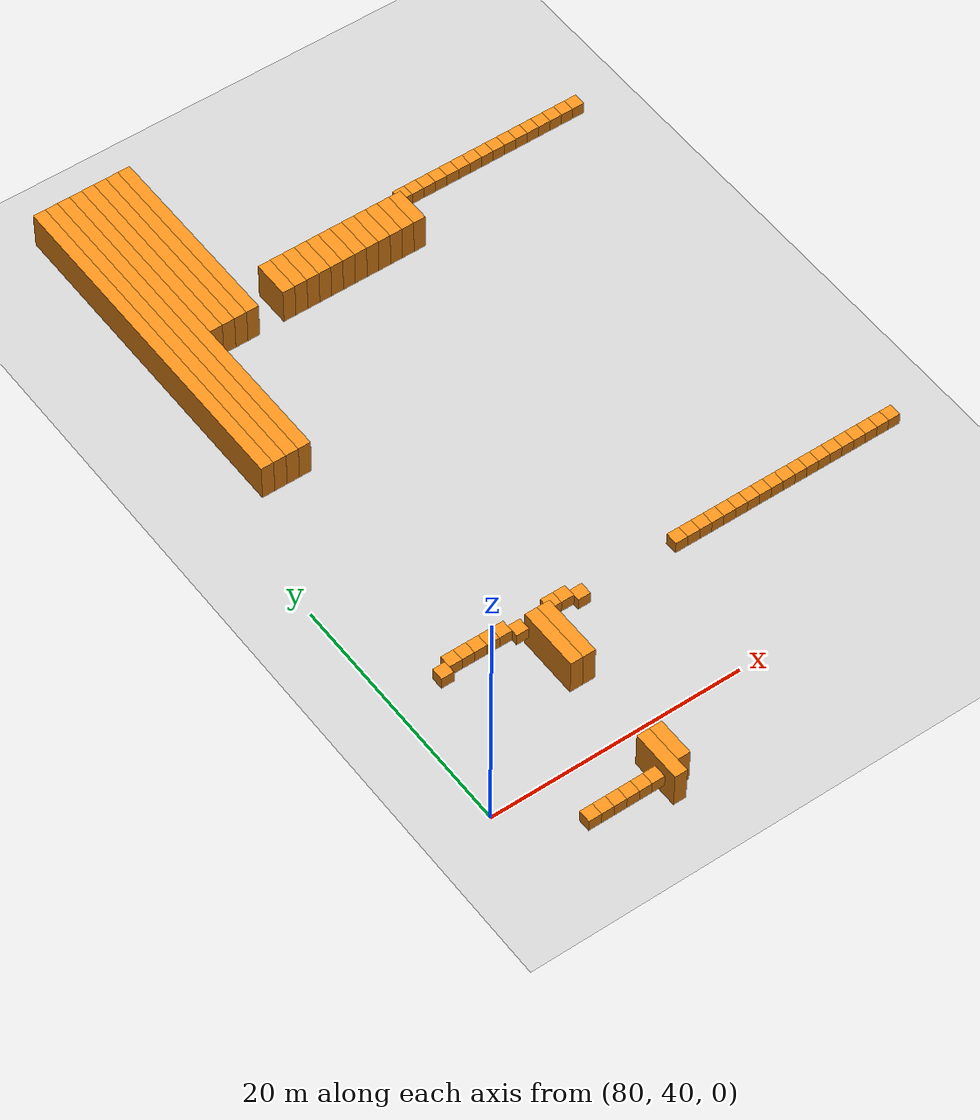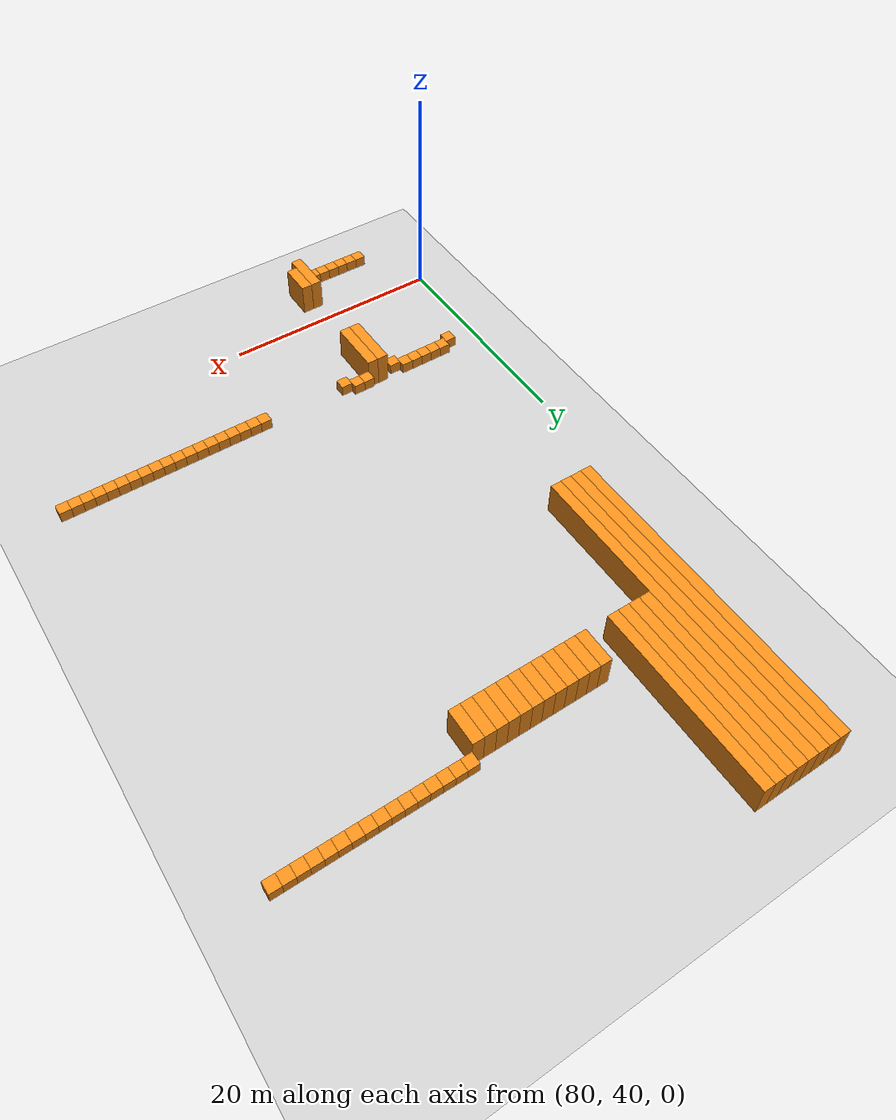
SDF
<sdf version="1.6">
 <world name="default">
  <include><uri>model://ground_plane</uri></include>
  <model name="unit_box_870">
   <pose>83.50    50.00     1.50 0 0 0</pose>
   <static>1</static>
   <link name="link">
    <inertial>
     <mass>5000</mass>
     <inertia><ixx>200</ixx><ixy>0</ixy><ixz>0</ixz><iyy>200</iyy><iyz>0</iyz><izz>200</izz></inertia>
    </inertial>
    <collision name="collision"><geometry><box><size>1 1 1</size></box></geometry></collision>
    <visual name="visual">
     <geometry><box><size>1 1 1</size></box></geometry>
     <material>
      <script><name>Gazebo/Orange</name><uri>file://media/materials/scripts/gazebo.material</uri></script>
     </material>
    </visual>
   </link>
  </model>
  <model name="unit_box_871">
   <pose>83.50    84.00     1.50 0 0 0</pose>
   <static>1</static>
   <link name="link">
    <inertial>
     <mass>5000</mass>
     <inertia><ixx>200</ixx><ixy>0</ixy><ixz>0</ixz><iyy>200</iyy><iyz>0</iyz><izz>200</izz></inertia>
    </inertial>
    <collision name="collision"><geometry><box><size>1 28 3</size></box></geometry></collision>
    <visual name="visual">
     <geometry><box><size>1 28 3</size></box></geometry>
     <material>
      <script><name>Gazebo/Orange</name><uri>file://media/materials/scripts/gazebo.material</uri></script>
     </material>
    </visual>
   </link>
  </model>
  <model name="unit_box_882">
   <pose>84.50    35.50     1.50 0 0 0</pose>
   <static>1</static>
   <link name="link">
    <inertial>
     <mass>5000</mass>
     <inertia><ixx>200</ixx><ixy>0</ixy><ixz>0</ixz><iyy>200</iyy><iyz>0</iyz><izz>200</izz></inertia>
    </inertial>
    <collision name="collision"><geometry><box><size>1 1 1</size></box></geometry></collision>
    <visual name="visual">
     <geometry><box><size>1 1 1</size></box></geometry>
     <material>
      <script><name>Gazebo/Orange</name><uri>file://media/materials/scripts/gazebo.material</uri></script>
     </material>
    </visual>
   </link>
  </model>
  <model name="unit_box_883">
   <pose>84.50    50.50     1.50 0 0 0</pose>
   <static>1</static>
   <link name="link">
    <inertial>
     <mass>5000</mass>
     <inertia><ixx>200</ixx><ixy>0</ixy><ixz>0</ixz><iyy>200</iyy><iyz>0</iyz><izz>200</izz></inertia>
    </inertial>
    <collision name="collision"><geometry><box><size>1 1 1</size></box></geometry></collision>
    <visual name="visual">
     <geometry><box><size>1 1 1</size></box></geometry>
     <material>
      <script><name>Gazebo/Orange</name><uri>file://media/materials/scripts/gazebo.material</uri></script>
     </material>
    </visual>
   </link>
  </model>
  <model name="unit_box_884">
   <pose>84.50    84.00     1.50 0 0 0</pose>
   <static>1</static>
   <link name="link">
    <inertial>
     <mass>5000</mass>
     <inertia><ixx>200</ixx><ixy>0</ixy><ixz>0</ixz><iyy>200</iyy><iyz>0</iyz><izz>200</izz></inertia>
    </inertial>
    <collision name="collision"><geometry><box><size>1 28 3</size></box></geometry></collision>
    <visual name="visual">
     <geometry><box><size>1 28 3</size></box></geometry>
     <material>
      <script><name>Gazebo/Orange</name><uri>file://media/materials/scripts/gazebo.material</uri></script>
     </material>
    </visual>
   </link>
  </model>
  <model name="unit_box_890">
   <pose>85.50    35.50     1.50 0 0 0</pose>
   <static>1</static>
   <link name="link">
    <inertial>
     <mass>5000</mass>
     <inertia><ixx>200</ixx><ixy>0</ixy><ixz>0</ixz><iyy>200</iyy><iyz>0</iyz><izz>200</izz></inertia>
    </inertial>
    <collision name="collision"><geometry><box><size>1 1 1</size></box></geometry></collision>
    <visual name="visual">
     <geometry><box><size>1 1 1</size></box></geometry>
     <material>
      <script><name>Gazebo/Orange</name><uri>file://media/materials/scripts/gazebo.material</uri></script>
     </material>
    </visual>
   </link>
  </model>
  <model name="unit_box_891">
   <pose>85.50    50.50     1.50 0 0 0</pose>
   <static>1</static>
   <link name="link">
    <inertial>
     <mass>5000</mass>
     <inertia><ixx>200</ixx><ixy>0</ixy><ixz>0</ixz><iyy>200</iyy><iyz>0</iyz><izz>200</izz></inertia>
    </inertial>
    <collision name="collision"><geometry><box><size>1 1 1</size></box></geometry></collision>
    <visual name="visual">
     <geometry><box><size>1 1 1</size></box></geometry>
     <material>
      <script><name>Gazebo/Orange</name><uri>file://media/materials/scripts/gazebo.material</uri></script>
     </material>
    </visual>
   </link>
  </model>
  <model name="unit_box_892">
   <pose>85.50    84.00     1.50 0 0 0</pose>
   <static>1</static>
   <link name="link">
    <inertial>
     <mass>5000</mass>
     <inertia><ixx>200</ixx><ixy>0</ixy><ixz>0</ixz><iyy>200</iyy><iyz>0</iyz><izz>200</izz></inertia>
    </inertial>
    <collision name="collision"><geometry><box><size>1 28 3</size></box></geometry></collision>
    <visual name="visual">
     <geometry><box><size>1 28 3</size></box></geometry>
     <material>
      <script><name>Gazebo/Orange</name><uri>file://media/materials/scripts/gazebo.material</uri></script>
     </material>
    </visual>
   </link>
  </model>
  <model name="unit_box_897">
   <pose>86.50    35.50     1.50 0 0 0</pose>
   <static>1</static>
   <link name="link">
    <inertial>
     <mass>5000</mass>
     <inertia><ixx>200</ixx><ixy>0</ixy><ixz>0</ixz><iyy>200</iyy><iyz>0</iyz><izz>200</izz></inertia>
    </inertial>
    <collision name="collision"><geometry><box><size>1 1 1</size></box></geometry></collision>
    <visual name="visual">
     <geometry><box><size>1 1 1</size></box></geometry>
     <material>
      <script><name>Gazebo/Orange</name><uri>file://media/materials/scripts/gazebo.material</uri></script>
     </material>
    </visual>
   </link>
  </model>
  <model name="unit_box_898">
   <pose>86.50    50.50     1.50 0 0 0</pose>
   <static>1</static>
   <link name="link">
    <inertial>
     <mass>5000</mass>
     <inertia><ixx>200</ixx><ixy>0</ixy><ixz>0</ixz><iyy>200</iyy><iyz>0</iyz><izz>200</izz></inertia>
    </inertial>
    <collision name="collision"><geometry><box><size>1 1 1</size></box></geometry></collision>
    <visual name="visual">
     <geometry><box><size>1 1 1</size></box></geometry>
     <material>
      <script><name>Gazebo/Orange</name><uri>file://media/materials/scripts/gazebo.material</uri></script>
     </material>
    </visual>
   </link>
  </model>
  <model name="unit_box_899">
   <pose>86.50    84.00     1.50 0 0 0</pose>
   <static>1</static>
   <link name="link">
    <inertial>
     <mass>5000</mass>
     <inertia><ixx>200</ixx><ixy>0</ixy><ixz>0</ixz><iyy>200</iyy><iyz>0</iyz><izz>200</izz></inertia>
    </inertial>
    <collision name="collision"><geometry><box><size>1 28 3</size></box></geometry></collision>
    <visual name="visual">
     <geometry><box><size>1 28 3</size></box></geometry>
     <material>
      <script><name>Gazebo/Orange</name><uri>file://media/materials/scripts/gazebo.material</uri></script>
     </material>
    </visual>
   </link>
  </model>
  <model name="unit_box_904">
   <pose>87.50    35.50     1.50 0 0 0</pose>
   <static>1</static>
   <link name="link">
    <inertial>
     <mass>5000</mass>
     <inertia><ixx>200</ixx><ixy>0</ixy><ixz>0</ixz><iyy>200</iyy><iyz>0</iyz><izz>200</izz></inertia>
    </inertial>
    <collision name="collision"><geometry><box><size>1 1 1</size></box></geometry></collision>
    <visual name="visual">
     <geometry><box><size>1 1 1</size></box></geometry>
     <material>
      <script><name>Gazebo/Orange</name><uri>file://media/materials/scripts/gazebo.material</uri></script>
     </material>
    </visual>
   </link>
  </model>
  <model name="unit_box_905">
   <pose>87.50    50.50     1.50 0 0 0</pose>
   <static>1</static>
   <link name="link">
    <inertial>
     <mass>5000</mass>
     <inertia><ixx>200</ixx><ixy>0</ixy><ixz>0</ixz><iyy>200</iyy><iyz>0</iyz><izz>200</izz></inertia>
    </inertial>
    <collision name="collision"><geometry><box><size>1 1 1</size></box></geometry></collision>
    <visual name="visual">
     <geometry><box><size>1 1 1</size></box></geometry>
     <material>
      <script><name>Gazebo/Orange</name><uri>file://media/materials/scripts/gazebo.material</uri></script>
     </material>
    </visual>
   </link>
  </model>
  <model name="unit_box_906">
   <pose>87.50    90.00     1.50 0 0 0</pose>
   <static>1</static>
   <link name="link">
    <inertial>
     <mass>5000</mass>
     <inertia><ixx>200</ixx><ixy>0</ixy><ixz>0</ixz><iyy>200</iyy><iyz>0</iyz><izz>200</izz></inertia>
    </inertial>
    <collision name="collision"><geometry><box><size>1 16 3</size></box></geometry></collision>
    <visual name="visual">
     <geometry><box><size>1 16 3</size></box></geometry>
     <material>
      <script><name>Gazebo/Orange</name><uri>file://media/materials/scripts/gazebo.material</uri></script>
     </material>
    </visual>
   </link>
  </model>
  <model name="unit_box_911">
   <pose>88.50    35.50     1.50 0 0 0</pose>
   <static>1</static>
   <link name="link">
    <inertial>
     <mass>5000</mass>
     <inertia><ixx>200</ixx><ixy>0</ixy><ixz>0</ixz><iyy>200</iyy><iyz>0</iyz><izz>200</izz></inertia>
    </inertial>
    <collision name="collision"><geometry><box><size>1 1 1</size></box></geometry></collision>
    <visual name="visual">
     <geometry><box><size>1 1 1</size></box></geometry>
     <material>
      <script><name>Gazebo/Orange</name><uri>file://media/materials/scripts/gazebo.material</uri></script>
     </material>
    </visual>
   </link>
  </model>
  <model name="unit_box_912">
   <pose>88.50    50.50     1.50 0 0 0</pose>
   <static>1</static>
   <link name="link">
    <inertial>
     <mass>5000</mass>
     <inertia><ixx>200</ixx><ixy>0</ixy><ixz>0</ixz><iyy>200</iyy><iyz>0</iyz><izz>200</izz></inertia>
    </inertial>
    <collision name="collision"><geometry><box><size>1 1 1</size></box></geometry></collision>
    <visual name="visual">
     <geometry><box><size>1 1 1</size></box></geometry>
     <material>
      <script><name>Gazebo/Orange</name><uri>file://media/materials/scripts/gazebo.material</uri></script>
     </material>
    </visual>
   </link>
  </model>
  <model name="unit_box_913">
   <pose>88.50    90.00     1.50 0 0 0</pose>
   <static>1</static>
   <link name="link">
    <inertial>
     <mass>5000</mass>
     <inertia><ixx>200</ixx><ixy>0</ixy><ixz>0</ixz><iyy>200</iyy><iyz>0</iyz><izz>200</izz></inertia>
    </inertial>
    <collision name="collision"><geometry><box><size>1 16 3</size></box></geometry></collision>
    <visual name="visual">
     <geometry><box><size>1 16 3</size></box></geometry>
     <material>
      <script><name>Gazebo/Orange</name><uri>file://media/materials/scripts/gazebo.material</uri></script>
     </material>
    </visual>
   </link>
  </model>
  <model name="unit_box_919">
   <pose>89.50    35.50     1.50 0 0 0</pose>
   <static>1</static>
   <link name="link">
    <inertial>
     <mass>5000</mass>
     <inertia><ixx>200</ixx><ixy>0</ixy><ixz>0</ixz><iyy>200</iyy><iyz>0</iyz><izz>200</izz></inertia>
    </inertial>
    <collision name="collision"><geometry><box><size>1 1 1</size></box></geometry></collision>
    <visual name="visual">
     <geometry><box><size>1 1 1</size></box></geometry>
     <material>
      <script><name>Gazebo/Orange</name><uri>file://media/materials/scripts/gazebo.material</uri></script>
     </material>
    </visual>
   </link>
  </model>
  <model name="unit_box_920">
   <pose>89.50    50.00     1.50 0 0 0</pose>
   <static>1</static>
   <link name="link">
    <inertial>
     <mass>5000</mass>
     <inertia><ixx>200</ixx><ixy>0</ixy><ixz>0</ixz><iyy>200</iyy><iyz>0</iyz><izz>200</izz></inertia>
    </inertial>
    <collision name="collision"><geometry><box><size>1 1 1</size></box></geometry></collision>
    <visual name="visual">
     <geometry><box><size>1 1 1</size></box></geometry>
     <material>
      <script><name>Gazebo/Orange</name><uri>file://media/materials/scripts/gazebo.material</uri></script>
     </material>
    </visual>
   </link>
  </model>
  <model name="unit_box_921">
   <pose>89.50    90.00     1.50 0 0 0</pose>
   <static>1</static>
   <link name="link">
    <inertial>
     <mass>5000</mass>
     <inertia><ixx>200</ixx><ixy>0</ixy><ixz>0</ixz><iyy>200</iyy><iyz>0</iyz><izz>200</izz></inertia>
    </inertial>
    <collision name="collision"><geometry><box><size>1 16 3</size></box></geometry></collision>
    <visual name="visual">
     <geometry><box><size>1 16 3</size></box></geometry>
     <material>
      <script><name>Gazebo/Orange</name><uri>file://media/materials/scripts/gazebo.material</uri></script>
     </material>
    </visual>
   </link>
  </model>
  <model name="unit_box_927">
   <pose>90.50    36.00     1.50 0 0 0</pose>
   <static>1</static>
   <link name="link">
    <inertial>
     <mass>5000</mass>
     <inertia><ixx>200</ixx><ixy>0</ixy><ixz>0</ixz><iyy>200</iyy><iyz>0</iyz><izz>200</izz></inertia>
    </inertial>
    <collision name="collision"><geometry><box><size>1 4 3</size></box></geometry></collision>
    <visual name="visual">
     <geometry><box><size>1 4 3</size></box></geometry>
     <material>
      <script><name>Gazebo/Orange</name><uri>file://media/materials/scripts/gazebo.material</uri></script>
     </material>
    </visual>
   </link>
  </model>
  <model name="unit_box_928">
   <pose>90.50    47.50     1.50 0 0 0</pose>
   <static>1</static>
   <link name="link">
    <inertial>
     <mass>5000</mass>
     <inertia><ixx>200</ixx><ixy>0</ixy><ixz>0</ixz><iyy>200</iyy><iyz>0</iyz><izz>200</izz></inertia>
    </inertial>
    <collision name="collision"><geometry><box><size>1 5 3</size></box></geometry></collision>
    <visual name="visual">
     <geometry><box><size>1 5 3</size></box></geometry>
     <material>
      <script><name>Gazebo/Orange</name><uri>file://media/materials/scripts/gazebo.material</uri></script>
     </material>
    </visual>
   </link>
  </model>
  <model name="unit_box_929">
   <pose>90.50    90.00     1.50 0 0 0</pose>
   <static>1</static>
   <link name="link">
    <inertial>
     <mass>5000</mass>
     <inertia><ixx>200</ixx><ixy>0</ixy><ixz>0</ixz><iyy>200</iyy><iyz>0</iyz><izz>200</izz></inertia>
    </inertial>
    <collision name="collision"><geometry><box><size>1 16 3</size></box></geometry></collision>
    <visual name="visual">
     <geometry><box><size>1 16 3</size></box></geometry>
     <material>
      <script><name>Gazebo/Orange</name><uri>file://media/materials/scripts/gazebo.material</uri></script>
     </material>
    </visual>
   </link>
  </model>
  <model name="unit_box_935">
   <pose>91.50    36.50     1.50 0 0 0</pose>
   <static>1</static>
   <link name="link">
    <inertial>
     <mass>5000</mass>
     <inertia><ixx>200</ixx><ixy>0</ixy><ixz>0</ixz><iyy>200</iyy><iyz>0</iyz><izz>200</izz></inertia>
    </inertial>
    <collision name="collision"><geometry><box><size>1 3 3</size></box></geometry></collision>
    <visual name="visual">
     <geometry><box><size>1 3 3</size></box></geometry>
     <material>
      <script><name>Gazebo/Orange</name><uri>file://media/materials/scripts/gazebo.material</uri></script>
     </material>
    </visual>
   </link>
  </model>
  <model name="unit_box_936">
   <pose>91.50    47.50     1.50 0 0 0</pose>
   <static>1</static>
   <link name="link">
    <inertial>
     <mass>5000</mass>
     <inertia><ixx>200</ixx><ixy>0</ixy><ixz>0</ixz><iyy>200</iyy><iyz>0</iyz><izz>200</izz></inertia>
    </inertial>
    <collision name="collision"><geometry><box><size>1 5 3</size></box></geometry></collision>
    <visual name="visual">
     <geometry><box><size>1 5 3</size></box></geometry>
     <material>
      <script><name>Gazebo/Orange</name><uri>file://media/materials/scripts/gazebo.material</uri></script>
     </material>
    </visual>
   </link>
  </model>
  <model name="unit_box_944">
   <pose>92.50    50.50     1.50 0 0 0</pose>
   <static>1</static>
   <link name="link">
    <inertial>
     <mass>5000</mass>
     <inertia><ixx>200</ixx><ixy>0</ixy><ixz>0</ixz><iyy>200</iyy><iyz>0</iyz><izz>200</izz></inertia>
    </inertial>
    <collision name="collision"><geometry><box><size>1 1 1</size></box></geometry></collision>
    <visual name="visual">
     <geometry><box><size>1 1 1</size></box></geometry>
     <material>
      <script><name>Gazebo/Orange</name><uri>file://media/materials/scripts/gazebo.material</uri></script>
     </material>
    </visual>
   </link>
  </model>
  <model name="unit_box_952">
   <pose>93.50    50.50     1.50 0 0 0</pose>
   <static>1</static>
   <link name="link">
    <inertial>
     <mass>5000</mass>
     <inertia><ixx>200</ixx><ixy>0</ixy><ixz>0</ixz><iyy>200</iyy><iyz>0</iyz><izz>200</izz></inertia>
    </inertial>
    <collision name="collision"><geometry><box><size>1 1 1</size></box></geometry></collision>
    <visual name="visual">
     <geometry><box><size>1 1 1</size></box></geometry>
     <material>
      <script><name>Gazebo/Orange</name><uri>file://media/materials/scripts/gazebo.material</uri></script>
     </material>
    </visual>
   </link>
  </model>
  <model name="unit_box_953">
   <pose>93.50    83.50     1.50 0 0 0</pose>
   <static>1</static>
   <link name="link">
    <inertial>
     <mass>5000</mass>
     <inertia><ixx>200</ixx><ixy>0</ixy><ixz>0</ixz><iyy>200</iyy><iyz>0</iyz><izz>200</izz></inertia>
    </inertial>
    <collision name="collision"><geometry><box><size>1 3 3</size></box></geometry></collision>
    <visual name="visual">
     <geometry><box><size>1 3 3</size></box></geometry>
     <material>
      <script><name>Gazebo/Orange</name><uri>file://media/materials/scripts/gazebo.material</uri></script>
     </material>
    </visual>
   </link>
  </model>
  <model name="unit_box_960">
   <pose>94.50    50.00     1.50 0 0 0</pose>
   <static>1</static>
   <link name="link">
    <inertial>
     <mass>5000</mass>
     <inertia><ixx>200</ixx><ixy>0</ixy><ixz>0</ixz><iyy>200</iyy><iyz>0</iyz><izz>200</izz></inertia>
    </inertial>
    <collision name="collision"><geometry><box><size>1 1 1</size></box></geometry></collision>
    <visual name="visual">
     <geometry><box><size>1 1 1</size></box></geometry>
     <material>
      <script><name>Gazebo/Orange</name><uri>file://media/materials/scripts/gazebo.material</uri></script>
     </material>
    </visual>
   </link>
  </model>
  <model name="unit_box_961">
   <pose>94.50    83.50     1.50 0 0 0</pose>
   <static>1</static>
   <link name="link">
    <inertial>
     <mass>5000</mass>
     <inertia><ixx>200</ixx><ixy>0</ixy><ixz>0</ixz><iyy>200</iyy><iyz>0</iyz><izz>200</izz></inertia>
    </inertial>
    <collision name="collision"><geometry><box><size>1 3 3</size></box></geometry></collision>
    <visual name="visual">
     <geometry><box><size>1 3 3</size></box></geometry>
     <material>
      <script><name>Gazebo/Orange</name><uri>file://media/materials/scripts/gazebo.material</uri></script>
     </material>
    </visual>
   </link>
  </model>
  <model name="unit_box_968">
   <pose>95.50    83.50     1.50 0 0 0</pose>
   <static>1</static>
   <link name="link">
    <inertial>
     <mass>5000</mass>
     <inertia><ixx>200</ixx><ixy>0</ixy><ixz>0</ixz><iyy>200</iyy><iyz>0</iyz><izz>200</izz></inertia>
    </inertial>
    <collision name="collision"><geometry><box><size>1 3 3</size></box></geometry></collision>
    <visual name="visual">
     <geometry><box><size>1 3 3</size></box></geometry>
     <material>
      <script><name>Gazebo/Orange</name><uri>file://media/materials/scripts/gazebo.material</uri></script>
     </material>
    </visual>
   </link>
  </model>
  <model name="unit_box_975">
   <pose>96.50    83.50     1.50 0 0 0</pose>
   <static>1</static>
   <link name="link">
    <inertial>
     <mass>5000</mass>
     <inertia><ixx>200</ixx><ixy>0</ixy><ixz>0</ixz><iyy>200</iyy><iyz>0</iyz><izz>200</izz></inertia>
    </inertial>
    <collision name="collision"><geometry><box><size>1 3 3</size></box></geometry></collision>
    <visual name="visual">
     <geometry><box><size>1 3 3</size></box></geometry>
     <material>
      <script><name>Gazebo/Orange</name><uri>file://media/materials/scripts/gazebo.material</uri></script>
     </material>
    </visual>
   </link>
  </model>
  <model name="unit_box_983">
   <pose>97.50    83.50     1.50 0 0 0</pose>
   <static>1</static>
   <link name="link">
    <inertial>
     <mass>5000</mass>
     <inertia><ixx>200</ixx><ixy>0</ixy><ixz>0</ixz><iyy>200</iyy><iyz>0</iyz><izz>200</izz></inertia>
    </inertial>
    <collision name="collision"><geometry><box><size>1 3 3</size></box></geometry></collision>
    <visual name="visual">
     <geometry><box><size>1 3 3</size></box></geometry>
     <material>
      <script><name>Gazebo/Orange</name><uri>file://media/materials/scripts/gazebo.material</uri></script>
     </material>
    </visual>
   </link>
  </model>
  <model name="unit_box_991">
   <pose>98.50    83.50     1.50 0 0 0</pose>
   <static>1</static>
   <link name="link">
    <inertial>
     <mass>5000</mass>
     <inertia><ixx>200</ixx><ixy>0</ixy><ixz>0</ixz><iyy>200</iyy><iyz>0</iyz><izz>200</izz></inertia>
    </inertial>
    <collision name="collision"><geometry><box><size>1 3 3</size></box></geometry></collision>
    <visual name="visual">
     <geometry><box><size>1 3 3</size></box></geometry>
     <material>
      <script><name>Gazebo/Orange</name><uri>file://media/materials/scripts/gazebo.material</uri></script>
     </material>
    </visual>
   </link>
  </model>
  <model name="unit_box_999">
   <pose>99.50    83.50     1.50 0 0 0</pose>
   <static>1</static>
   <link name="link">
    <inertial>
     <mass>5000</mass>
     <inertia><ixx>200</ixx><ixy>0</ixy><ixz>0</ixz><iyy>200</iyy><iyz>0</iyz><izz>200</izz></inertia>
    </inertial>
    <collision name="collision"><geometry><box><size>1 3 3</size></box></geometry></collision>
    <visual name="visual">
     <geometry><box><size>1 3 3</size></box></geometry>
     <material>
      <script><name>Gazebo/Orange</name><uri>file://media/materials/scripts/gazebo.material</uri></script>
     </material>
    </visual>
   </link>
  </model>
  <model name="unit_box_1006">
   <pose>100.50    83.50     1.50 0 0 0</pose>
   <static>1</static>
   <link name="link">
    <inertial>
     <mass>5000</mass>
     <inertia><ixx>200</ixx><ixy>0</ixy><ixz>0</ixz><iyy>200</iyy><iyz>0</iyz><izz>200</izz></inertia>
    </inertial>
    <collision name="collision"><geometry><box><size>1 3 3</size></box></geometry></collision>
    <visual name="visual">
     <geometry><box><size>1 3 3</size></box></geometry>
     <material>
      <script><name>Gazebo/Orange</name><uri>file://media/materials/scripts/gazebo.material</uri></script>
     </material>
    </visual>
   </link>
  </model>
  <model name="unit_box_1012">
   <pose>101.50    83.50     1.50 0 0 0</pose>
   <static>1</static>
   <link name="link">
    <inertial>
     <mass>5000</mass>
     <inertia><ixx>200</ixx><ixy>0</ixy><ixz>0</ixz><iyy>200</iyy><iyz>0</iyz><izz>200</izz></inertia>
    </inertial>
    <collision name="collision"><geometry><box><size>1 3 3</size></box></geometry></collision>
    <visual name="visual">
     <geometry><box><size>1 3 3</size></box></geometry>
     <material>
      <script><name>Gazebo/Orange</name><uri>file://media/materials/scripts/gazebo.material</uri></script>
     </material>
    </visual>
   </link>
  </model>
  <model name="unit_box_1018">
   <pose>102.50    50.00     1.50 0 0 0</pose>
   <static>1</static>
   <link name="link">
    <inertial>
     <mass>5000</mass>
     <inertia><ixx>200</ixx><ixy>0</ixy><ixz>0</ixz><iyy>200</iyy><iyz>0</iyz><izz>200</izz></inertia>
    </inertial>
    <collision name="collision"><geometry><box><size>1 1 1</size></box></geometry></collision>
    <visual name="visual">
     <geometry><box><size>1 1 1</size></box></geometry>
     <material>
      <script><name>Gazebo/Orange</name><uri>file://media/materials/scripts/gazebo.material</uri></script>
     </material>
    </visual>
   </link>
  </model>
  <model name="unit_box_1019">
   <pose>102.50    83.50     1.50 0 0 0</pose>
   <static>1</static>
   <link name="link">
    <inertial>
     <mass>5000</mass>
     <inertia><ixx>200</ixx><ixy>0</ixy><ixz>0</ixz><iyy>200</iyy><iyz>0</iyz><izz>200</izz></inertia>
    </inertial>
    <collision name="collision"><geometry><box><size>1 3 3</size></box></geometry></collision>
    <visual name="visual">
     <geometry><box><size>1 3 3</size></box></geometry>
     <material>
      <script><name>Gazebo/Orange</name><uri>file://media/materials/scripts/gazebo.material</uri></script>
     </material>
    </visual>
   </link>
  </model>
  <model name="unit_box_1025">
   <pose>103.50    50.00     1.50 0 0 0</pose>
   <static>1</static>
   <link name="link">
    <inertial>
     <mass>5000</mass>
     <inertia><ixx>200</ixx><ixy>0</ixy><ixz>0</ixz><iyy>200</iyy><iyz>0</iyz><izz>200</izz></inertia>
    </inertial>
    <collision name="collision"><geometry><box><size>1 1 1</size></box></geometry></collision>
    <visual name="visual">
     <geometry><box><size>1 1 1</size></box></geometry>
     <material>
      <script><name>Gazebo/Orange</name><uri>file://media/materials/scripts/gazebo.material</uri></script>
     </material>
    </visual>
   </link>
  </model>
  <model name="unit_box_1026">
   <pose>103.50    83.50     1.50 0 0 0</pose>
   <static>1</static>
   <link name="link">
    <inertial>
     <mass>5000</mass>
     <inertia><ixx>200</ixx><ixy>0</ixy><ixz>0</ixz><iyy>200</iyy><iyz>0</iyz><izz>200</izz></inertia>
    </inertial>
    <collision name="collision"><geometry><box><size>1 3 3</size></box></geometry></collision>
    <visual name="visual">
     <geometry><box><size>1 3 3</size></box></geometry>
     <material>
      <script><name>Gazebo/Orange</name><uri>file://media/materials/scripts/gazebo.material</uri></script>
     </material>
    </visual>
   </link>
  </model>
  <model name="unit_box_1032">
   <pose>104.50    50.00     1.50 0 0 0</pose>
   <static>1</static>
   <link name="link">
    <inertial>
     <mass>5000</mass>
     <inertia><ixx>200</ixx><ixy>0</ixy><ixz>0</ixz><iyy>200</iyy><iyz>0</iyz><izz>200</izz></inertia>
    </inertial>
    <collision name="collision"><geometry><box><size>1 1 1</size></box></geometry></collision>
    <visual name="visual">
     <geometry><box><size>1 1 1</size></box></geometry>
     <material>
      <script><name>Gazebo/Orange</name><uri>file://media/materials/scripts/gazebo.material</uri></script>
     </material>
    </visual>
   </link>
  </model>
  <model name="unit_box_1033">
   <pose>104.50    83.50     1.50 0 0 0</pose>
   <static>1</static>
   <link name="link">
    <inertial>
     <mass>5000</mass>
     <inertia><ixx>200</ixx><ixy>0</ixy><ixz>0</ixz><iyy>200</iyy><iyz>0</iyz><izz>200</izz></inertia>
    </inertial>
    <collision name="collision"><geometry><box><size>1 3 3</size></box></geometry></collision>
    <visual name="visual">
     <geometry><box><size>1 3 3</size></box></geometry>
     <material>
      <script><name>Gazebo/Orange</name><uri>file://media/materials/scripts/gazebo.material</uri></script>
     </material>
    </visual>
   </link>
  </model>
  <model name="unit_box_1039">
   <pose>105.50    50.00     1.50 0 0 0</pose>
   <static>1</static>
   <link name="link">
    <inertial>
     <mass>5000</mass>
     <inertia><ixx>200</ixx><ixy>0</ixy><ixz>0</ixz><iyy>200</iyy><iyz>0</iyz><izz>200</izz></inertia>
    </inertial>
    <collision name="collision"><geometry><box><size>1 1 1</size></box></geometry></collision>
    <visual name="visual">
     <geometry><box><size>1 1 1</size></box></geometry>
     <material>
      <script><name>Gazebo/Orange</name><uri>file://media/materials/scripts/gazebo.material</uri></script>
     </material>
    </visual>
   </link>
  </model>
  <model name="unit_box_1040">
   <pose>105.50    85.50     1.50 0 0 0</pose>
   <static>1</static>
   <link name="link">
    <inertial>
     <mass>5000</mass>
     <inertia><ixx>200</ixx><ixy>0</ixy><ixz>0</ixz><iyy>200</iyy><iyz>0</iyz><izz>200</izz></inertia>
    </inertial>
    <collision name="collision"><geometry><box><size>1 1 1</size></box></geometry></collision>
    <visual name="visual">
     <geometry><box><size>1 1 1</size></box></geometry>
     <material>
      <script><name>Gazebo/Orange</name><uri>file://media/materials/scripts/gazebo.material</uri></script>
     </material>
    </visual>
   </link>
  </model>
  <model name="unit_box_1046">
   <pose>106.50    50.00     1.50 0 0 0</pose>
   <static>1</static>
   <link name="link">
    <inertial>
     <mass>5000</mass>
     <inertia><ixx>200</ixx><ixy>0</ixy><ixz>0</ixz><iyy>200</iyy><iyz>0</iyz><izz>200</izz></inertia>
    </inertial>
    <collision name="collision"><geometry><box><size>1 1 1</size></box></geometry></collision>
    <visual name="visual">
     <geometry><box><size>1 1 1</size></box></geometry>
     <material>
      <script><name>Gazebo/Orange</name><uri>file://media/materials/scripts/gazebo.material</uri></script>
     </material>
    </visual>
   </link>
  </model>
  <model name="unit_box_1047">
   <pose>106.50    85.50     1.50 0 0 0</pose>
   <static>1</static>
   <link name="link">
    <inertial>
     <mass>5000</mass>
     <inertia><ixx>200</ixx><ixy>0</ixy><ixz>0</ixz><iyy>200</iyy><iyz>0</iyz><izz>200</izz></inertia>
    </inertial>
    <collision name="collision"><geometry><box><size>1 1 1</size></box></geometry></collision>
    <visual name="visual">
     <geometry><box><size>1 1 1</size></box></geometry>
     <material>
      <script><name>Gazebo/Orange</name><uri>file://media/materials/scripts/gazebo.material</uri></script>
     </material>
    </visual>
   </link>
  </model>
  <model name="unit_box_1053">
   <pose>107.50    50.00     1.50 0 0 0</pose>
   <static>1</static>
   <link name="link">
    <inertial>
     <mass>5000</mass>
     <inertia><ixx>200</ixx><ixy>0</ixy><ixz>0</ixz><iyy>200</iyy><iyz>0</iyz><izz>200</izz></inertia>
    </inertial>
    <collision name="collision"><geometry><box><size>1 1 1</size></box></geometry></collision>
    <visual name="visual">
     <geometry><box><size>1 1 1</size></box></geometry>
     <material>
      <script><name>Gazebo/Orange</name><uri>file://media/materials/scripts/gazebo.material</uri></script>
     </material>
    </visual>
   </link>
  </model>
  <model name="unit_box_1054">
   <pose>107.50    85.50     1.50 0 0 0</pose>
   <static>1</static>
   <link name="link">
    <inertial>
     <mass>5000</mass>
     <inertia><ixx>200</ixx><ixy>0</ixy><ixz>0</ixz><iyy>200</iyy><iyz>0</iyz><izz>200</izz></inertia>
    </inertial>
    <collision name="collision"><geometry><box><size>1 1 1</size></box></geometry></collision>
    <visual name="visual">
     <geometry><box><size>1 1 1</size></box></geometry>
     <material>
      <script><name>Gazebo/Orange</name><uri>file://media/materials/scripts/gazebo.material</uri></script>
     </material>
    </visual>
   </link>
  </model>
  <model name="unit_box_1061">
   <pose>108.50    50.00     1.50 0 0 0</pose>
   <static>1</static>
   <link name="link">
    <inertial>
     <mass>5000</mass>
     <inertia><ixx>200</ixx><ixy>0</ixy><ixz>0</ixz><iyy>200</iyy><iyz>0</iyz><izz>200</izz></inertia>
    </inertial>
    <collision name="collision"><geometry><box><size>1 1 1</size></box></geometry></collision>
    <visual name="visual">
     <geometry><box><size>1 1 1</size></box></geometry>
     <material>
      <script><name>Gazebo/Orange</name><uri>file://media/materials/scripts/gazebo.material</uri></script>
     </material>
    </visual>
   </link>
  </model>
  <model name="unit_box_1062">
   <pose>108.50    85.50     1.50 0 0 0</pose>
   <static>1</static>
   <link name="link">
    <inertial>
     <mass>5000</mass>
     <inertia><ixx>200</ixx><ixy>0</ixy><ixz>0</ixz><iyy>200</iyy><iyz>0</iyz><izz>200</izz></inertia>
    </inertial>
    <collision name="collision"><geometry><box><size>1 1 1</size></box></geometry></collision>
    <visual name="visual">
     <geometry><box><size>1 1 1</size></box></geometry>
     <material>
      <script><name>Gazebo/Orange</name><uri>file://media/materials/scripts/gazebo.material</uri></script>
     </material>
    </visual>
   </link>
  </model>
  <model name="unit_box_1070">
   <pose>109.50    50.00     1.50 0 0 0</pose>
   <static>1</static>
   <link name="link">
    <inertial>
     <mass>5000</mass>
     <inertia><ixx>200</ixx><ixy>0</ixy><ixz>0</ixz><iyy>200</iyy><iyz>0</iyz><izz>200</izz></inertia>
    </inertial>
    <collision name="collision"><geometry><box><size>1 1 1</size></box></geometry></collision>
    <visual name="visual">
     <geometry><box><size>1 1 1</size></box></geometry>
     <material>
      <script><name>Gazebo/Orange</name><uri>file://media/materials/scripts/gazebo.material</uri></script>
     </material>
    </visual>
   </link>
  </model>
  <model name="unit_box_1071">
   <pose>109.50    85.50     1.50 0 0 0</pose>
   <static>1</static>
   <link name="link">
    <inertial>
     <mass>5000</mass>
     <inertia><ixx>200</ixx><ixy>0</ixy><ixz>0</ixz><iyy>200</iyy><iyz>0</iyz><izz>200</izz></inertia>
    </inertial>
    <collision name="collision"><geometry><box><size>1 1 1</size></box></geometry></collision>
    <visual name="visual">
     <geometry><box><size>1 1 1</size></box></geometry>
     <material>
      <script><name>Gazebo/Orange</name><uri>file://media/materials/scripts/gazebo.material</uri></script>
     </material>
    </visual>
   </link>
  </model>
  <model name="unit_box_1079">
   <pose>110.50    50.00     1.50 0 0 0</pose>
   <static>1</static>
   <link name="link">
    <inertial>
     <mass>5000</mass>
     <inertia><ixx>200</ixx><ixy>0</ixy><ixz>0</ixz><iyy>200</iyy><iyz>0</iyz><izz>200</izz></inertia>
    </inertial>
    <collision name="collision"><geometry><box><size>1 1 1</size></box></geometry></collision>
    <visual name="visual">
     <geometry><box><size>1 1 1</size></box></geometry>
     <material>
      <script><name>Gazebo/Orange</name><uri>file://media/materials/scripts/gazebo.material</uri></script>
     </material>
    </visual>
   </link>
  </model>
  <model name="unit_box_1080">
   <pose>110.50    85.50     1.50 0 0 0</pose>
   <static>1</static>
   <link name="link">
    <inertial>
     <mass>5000</mass>
     <inertia><ixx>200</ixx><ixy>0</ixy><ixz>0</ixz><iyy>200</iyy><iyz>0</iyz><izz>200</izz></inertia>
    </inertial>
    <collision name="collision"><geometry><box><size>1 1 1</size></box></geometry></collision>
    <visual name="visual">
     <geometry><box><size>1 1 1</size></box></geometry>
     <material>
      <script><name>Gazebo/Orange</name><uri>file://media/materials/scripts/gazebo.material</uri></script>
     </material>
    </visual>
   </link>
  </model>
  <model name="unit_box_1088">
   <pose>111.50    50.00     1.50 0 0 0</pose>
   <static>1</static>
   <link name="link">
    <inertial>
     <mass>5000</mass>
     <inertia><ixx>200</ixx><ixy>0</ixy><ixz>0</ixz><iyy>200</iyy><iyz>0</iyz><izz>200</izz></inertia>
    </inertial>
    <collision name="collision"><geometry><box><size>1 1 1</size></box></geometry></collision>
    <visual name="visual">
     <geometry><box><size>1 1 1</size></box></geometry>
     <material>
      <script><name>Gazebo/Orange</name><uri>file://media/materials/scripts/gazebo.material</uri></script>
     </material>
    </visual>
   </link>
  </model>
  <model name="unit_box_1089">
   <pose>111.50    85.50     1.50 0 0 0</pose>
   <static>1</static>
   <link name="link">
    <inertial>
     <mass>5000</mass>
     <inertia><ixx>200</ixx><ixy>0</ixy><ixz>0</ixz><iyy>200</iyy><iyz>0</iyz><izz>200</izz></inertia>
    </inertial>
    <collision name="collision"><geometry><box><size>1 1 1</size></box></geometry></collision>
    <visual name="visual">
     <geometry><box><size>1 1 1</size></box></geometry>
     <material>
      <script><name>Gazebo/Orange</name><uri>file://media/materials/scripts/gazebo.material</uri></script>
     </material>
    </visual>
   </link>
  </model>
  <model name="unit_box_1096">
   <pose>112.50    50.00     1.50 0 0 0</pose>
   <static>1</static>
   <link name="link">
    <inertial>
     <mass>5000</mass>
     <inertia><ixx>200</ixx><ixy>0</ixy><ixz>0</ixz><iyy>200</iyy><iyz>0</iyz><izz>200</izz></inertia>
    </inertial>
    <collision name="collision"><geometry><box><size>1 1 1</size></box></geometry></collision>
    <visual name="visual">
     <geometry><box><size>1 1 1</size></box></geometry>
     <material>
      <script><name>Gazebo/Orange</name><uri>file://media/materials/scripts/gazebo.material</uri></script>
     </material>
    </visual>
   </link>
  </model>
  <model name="unit_box_1097">
   <pose>112.50    85.50     1.50 0 0 0</pose>
   <static>1</static>
   <link name="link">
    <inertial>
     <mass>5000</mass>
     <inertia><ixx>200</ixx><ixy>0</ixy><ixz>0</ixz><iyy>200</iyy><iyz>0</iyz><izz>200</izz></inertia>
    </inertial>
    <collision name="collision"><geometry><box><size>1 1 1</size></box></geometry></collision>
    <visual name="visual">
     <geometry><box><size>1 1 1</size></box></geometry>
     <material>
      <script><name>Gazebo/Orange</name><uri>file://media/materials/scripts/gazebo.material</uri></script>
     </material>
    </visual>
   </link>
  </model>
  <model name="unit_box_1104">
   <pose>113.50    50.00     1.50 0 0 0</pose>
   <static>1</static>
   <link name="link">
    <inertial>
     <mass>5000</mass>
     <inertia><ixx>200</ixx><ixy>0</ixy><ixz>0</ixz><iyy>200</iyy><iyz>0</iyz><izz>200</izz></inertia>
    </inertial>
    <collision name="collision"><geometry><box><size>1 1 1</size></box></geometry></collision>
    <visual name="visual">
     <geometry><box><size>1 1 1</size></box></geometry>
     <material>
      <script><name>Gazebo/Orange</name><uri>file://media/materials/scripts/gazebo.material</uri></script>
     </material>
    </visual>
   </link>
  </model>
  <model name="unit_box_1105">
   <pose>113.50    85.50     1.50 0 0 0</pose>
   <static>1</static>
   <link name="link">
    <inertial>
     <mass>5000</mass>
     <inertia><ixx>200</ixx><ixy>0</ixy><ixz>0</ixz><iyy>200</iyy><iyz>0</iyz><izz>200</izz></inertia>
    </inertial>
    <collision name="collision"><geometry><box><size>1 1 1</size></box></geometry></collision>
    <visual name="visual">
     <geometry><box><size>1 1 1</size></box></geometry>
     <material>
      <script><name>Gazebo/Orange</name><uri>file://media/materials/scripts/gazebo.material</uri></script>
     </material>
    </visual>
   </link>
  </model>
  <model name="unit_box_1112">
   <pose>114.50    50.00     1.50 0 0 0</pose>
   <static>1</static>
   <link name="link">
    <inertial>
     <mass>5000</mass>
     <inertia><ixx>200</ixx><ixy>0</ixy><ixz>0</ixz><iyy>200</iyy><iyz>0</iyz><izz>200</izz></inertia>
    </inertial>
    <collision name="collision"><geometry><box><size>1 1 1</size></box></geometry></collision>
    <visual name="visual">
     <geometry><box><size>1 1 1</size></box></geometry>
     <material>
      <script><name>Gazebo/Orange</name><uri>file://media/materials/scripts/gazebo.material</uri></script>
     </material>
    </visual>
   </link>
  </model>
  <model name="unit_box_1113">
   <pose>114.50    85.50     1.50 0 0 0</pose>
   <static>1</static>
   <link name="link">
    <inertial>
     <mass>5000</mass>
     <inertia><ixx>200</ixx><ixy>0</ixy><ixz>0</ixz><iyy>200</iyy><iyz>0</iyz><izz>200</izz></inertia>
    </inertial>
    <collision name="collision"><geometry><box><size>1 1 1</size></box></geometry></collision>
    <visual name="visual">
     <geometry><box><size>1 1 1</size></box></geometry>
     <material>
      <script><name>Gazebo/Orange</name><uri>file://media/materials/scripts/gazebo.material</uri></script>
     </material>
    </visual>
   </link>
  </model>
  <model name="unit_box_1120">
   <pose>115.50    50.00     1.50 0 0 0</pose>
   <static>1</static>
   <link name="link">
    <inertial>
     <mass>5000</mass>
     <inertia><ixx>200</ixx><ixy>0</ixy><ixz>0</ixz><iyy>200</iyy><iyz>0</iyz><izz>200</izz></inertia>
    </inertial>
    <collision name="collision"><geometry><box><size>1 1 1</size></box></geometry></collision>
    <visual name="visual">
     <geometry><box><size>1 1 1</size></box></geometry>
     <material>
      <script><name>Gazebo/Orange</name><uri>file://media/materials/scripts/gazebo.material</uri></script>
     </material>
    </visual>
   </link>
  </model>
  <model name="unit_box_1121">
   <pose>115.50    85.50     1.50 0 0 0</pose>
   <static>1</static>
   <link name="link">
    <inertial>
     <mass>5000</mass>
     <inertia><ixx>200</ixx><ixy>0</ixy><ixz>0</ixz><iyy>200</iyy><iyz>0</iyz><izz>200</izz></inertia>
    </inertial>
    <collision name="collision"><geometry><box><size>1 1 1</size></box></geometry></collision>
    <visual name="visual">
     <geometry><box><size>1 1 1</size></box></geometry>
     <material>
      <script><name>Gazebo/Orange</name><uri>file://media/materials/scripts/gazebo.material</uri></script>
     </material>
    </visual>
   </link>
  </model>
  <model name="unit_box_1129">
   <pose>116.50    50.00     1.50 0 0 0</pose>
   <static>1</static>
   <link name="link">
    <inertial>
     <mass>5000</mass>
     <inertia><ixx>200</ixx><ixy>0</ixy><ixz>0</ixz><iyy>200</iyy><iyz>0</iyz><izz>200</izz></inertia>
    </inertial>
    <collision name="collision"><geometry><box><size>1 1 1</size></box></geometry></collision>
    <visual name="visual">
     <geometry><box><size>1 1 1</size></box></geometry>
     <material>
      <script><name>Gazebo/Orange</name><uri>file://media/materials/scripts/gazebo.material</uri></script>
     </material>
    </visual>
   </link>
  </model>
  <model name="unit_box_1130">
   <pose>116.50    85.50     1.50 0 0 0</pose>
   <static>1</static>
   <link name="link">
    <inertial>
     <mass>5000</mass>
     <inertia><ixx>200</ixx><ixy>0</ixy><ixz>0</ixz><iyy>200</iyy><iyz>0</iyz><izz>200</izz></inertia>
    </inertial>
    <collision name="collision"><geometry><box><size>1 1 1</size></box></geometry></collision>
    <visual name="visual">
     <geometry><box><size>1 1 1</size></box></geometry>
     <material>
      <script><name>Gazebo/Orange</name><uri>file://media/materials/scripts/gazebo.material</uri></script>
     </material>
    </visual>
   </link>
  </model>
  <model name="unit_box_1138">
   <pose>117.50    50.00     1.50 0 0 0</pose>
   <static>1</static>
   <link name="link">
    <inertial>
     <mass>5000</mass>
     <inertia><ixx>200</ixx><ixy>0</ixy><ixz>0</ixz><iyy>200</iyy><iyz>0</iyz><izz>200</izz></inertia>
    </inertial>
    <collision name="collision"><geometry><box><size>1 1 1</size></box></geometry></collision>
    <visual name="visual">
     <geometry><box><size>1 1 1</size></box></geometry>
     <material>
      <script><name>Gazebo/Orange</name><uri>file://media/materials/scripts/gazebo.material</uri></script>
     </material>
    </visual>
   </link>
  </model>
  <model name="unit_box_1139">
   <pose>117.50    85.50     1.50 0 0 0</pose>
   <static>1</static>
   <link name="link">
    <inertial>
     <mass>5000</mass>
     <inertia><ixx>200</ixx><ixy>0</ixy><ixz>0</ixz><iyy>200</iyy><iyz>0</iyz><izz>200</izz></inertia>
    </inertial>
    <collision name="collision"><geometry><box><size>1 1 1</size></box></geometry></collision>
    <visual name="visual">
     <geometry><box><size>1 1 1</size></box></geometry>
     <material>
      <script><name>Gazebo/Orange</name><uri>file://media/materials/scripts/gazebo.material</uri></script>
     </material>
    </visual>
   </link>
  </model>
  <model name="unit_box_1147">
   <pose>118.50    50.00     1.50 0 0 0</pose>
   <static>1</static>
   <link name="link">
    <inertial>
     <mass>5000</mass>
     <inertia><ixx>200</ixx><ixy>0</ixy><ixz>0</ixz><iyy>200</iyy><iyz>0</iyz><izz>200</izz></inertia>
    </inertial>
    <collision name="collision"><geometry><box><size>1 1 1</size></box></geometry></collision>
    <visual name="visual">
     <geometry><box><size>1 1 1</size></box></geometry>
     <material>
      <script><name>Gazebo/Orange</name><uri>file://media/materials/scripts/gazebo.material</uri></script>
     </material>
    </visual>
   </link>
  </model>
  <model name="unit_box_1148">
   <pose>118.50    85.50     1.50 0 0 0</pose>
   <static>1</static>
   <link name="link">
    <inertial>
     <mass>5000</mass>
     <inertia><ixx>200</ixx><ixy>0</ixy><ixz>0</ixz><iyy>200</iyy><iyz>0</iyz><izz>200</izz></inertia>
    </inertial>
    <collision name="collision"><geometry><box><size>1 1 1</size></box></geometry></collision>
    <visual name="visual">
     <geometry><box><size>1 1 1</size></box></geometry>
     <material>
      <script><name>Gazebo/Orange</name><uri>file://media/materials/scripts/gazebo.material</uri></script>
     </material>
    </visual>
   </link>
  </model>
  <model name="unit_box_1156">
   <pose>119.50    50.00     1.50 0 0 0</pose>
   <static>1</static>
   <link name="link">
    <inertial>
     <mass>5000</mass>
     <inertia><ixx>200</ixx><ixy>0</ixy><ixz>0</ixz><iyy>200</iyy><iyz>0</iyz><izz>200</izz></inertia>
    </inertial>
    <collision name="collision"><geometry><box><size>1 1 1</size></box></geometry></collision>
    <visual name="visual">
     <geometry><box><size>1 1 1</size></box></geometry>
     <material>
      <script><name>Gazebo/Orange</name><uri>file://media/materials/scripts/gazebo.material</uri></script>
     </material>
    </visual>
   </link>
  </model>
  <model name="unit_box_1157">
   <pose>119.50    85.50     1.50 0 0 0</pose>
   <static>1</static>
   <link name="link">
    <inertial>
     <mass>5000</mass>
     <inertia><ixx>200</ixx><ixy>0</ixy><ixz>0</ixz><iyy>200</iyy><iyz>0</iyz><izz>200</izz></inertia>
    </inertial>
    <collision name="collision"><geometry><box><size>1 1 1</size></box></geometry></collision>
    <visual name="visual">
     <geometry><box><size>1 1 1</size></box></geometry>
     <material>
      <script><name>Gazebo/Orange</name><uri>file://media/materials/scripts/gazebo.material</uri></script>
     </material>
    </visual>
   </link>
  </model>
  <model name="unit_box_1165">
   <pose>120.50    50.00     1.50 0 0 0</pose>
   <static>1</static>
   <link name="link">
    <inertial>
     <mass>5000</mass>
     <inertia><ixx>200</ixx><ixy>0</ixy><ixz>0</ixz><iyy>200</iyy><iyz>0</iyz><izz>200</izz></inertia>
    </inertial>
    <collision name="collision"><geometry><box><size>1 1 1</size></box></geometry></collision>
    <visual name="visual">
     <geometry><box><size>1 1 1</size></box></geometry>
     <material>
      <script><name>Gazebo/Orange</name><uri>file://media/materials/scripts/gazebo.material</uri></script>
     </material>
    </visual>
   </link>
  </model>
  <model name="unit_box_1166">
   <pose>120.50    85.50     1.50 0 0 0</pose>
   <static>1</static>
   <link name="link">
    <inertial>
     <mass>5000</mass>
     <inertia><ixx>200</ixx><ixy>0</ixy><ixz>0</ixz><iyy>200</iyy><iyz>0</iyz><izz>200</izz></inertia>
    </inertial>
    <collision name="collision"><geometry><box><size>1 1 1</size></box></geometry></collision>
    <visual name="visual">
     <geometry><box><size>1 1 1</size></box></geometry>
     <material>
      <script><name>Gazebo/Orange</name><uri>file://media/materials/scripts/gazebo.material</uri></script>
     </material>
    </visual>
   </link>
  </model>
 </world>
</sdf>
